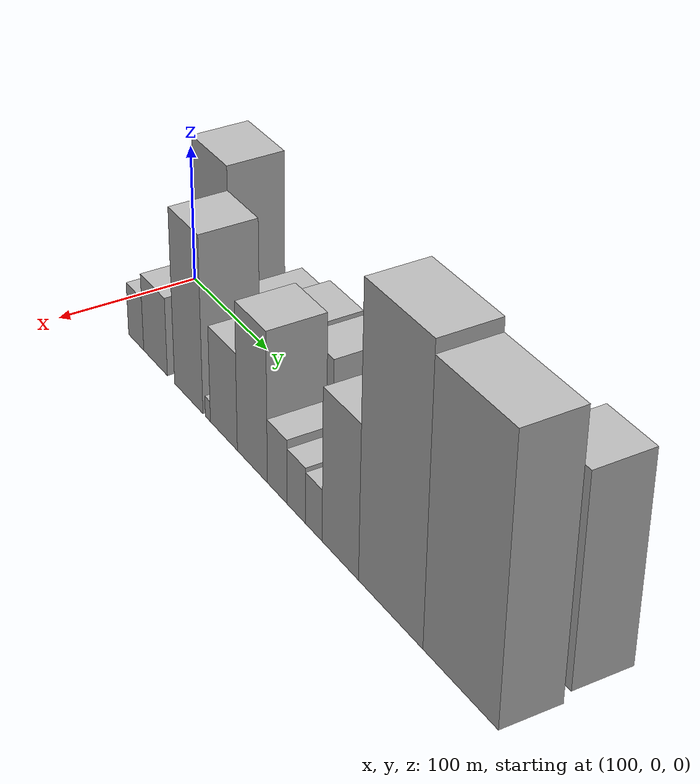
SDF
<sdf version="1.6">
 <world name="default">
  <model name="building_12">
   <static>1</static>
   <pose>100.0000 64.5679 0 0.000000 0.000000 0.000000</pose>
   <link name="link">
    <pose>0 0 66.00 0 0 0</pose>
    <collision name="collision"><geometry><box><size>40.0000 46.4380 132.0000</size></box></geometry></collision>
    <visual name="visual">
     <cast_shadows>0</cast_shadows>
     <geometry><box><size>40.0000 46.4380 132.0000</size></box></geometry>
     <material>
      <script>
       <uri>model://HANNAS_wall/materials/scripts</uri>
       <uri>model://HANNAS_wall/materials/textures</uri>
       <name>vrc/HANNAS_wall</name>
      </script>
     </material>
    </visual>
   </link>
  </model>
  <model name="building_13">
   <static>1</static>
   <pose>100.0000 92.8448 0 0.000000 0.000000 0.000000</pose>
   <link name="link">
    <pose>0 0 12.00 0 0 0</pose>
    <collision name="collision"><geometry><box><size>40.0000 10.1159 24.0000</size></box></geometry></collision>
    <visual name="visual">
     <cast_shadows>0</cast_shadows>
     <geometry><box><size>40.0000 10.1159 24.0000</size></box></geometry>
     <material>
      <script>
       <uri>model://HANNAS_wall/materials/scripts</uri>
       <uri>model://HANNAS_wall/materials/textures</uri>
       <name>vrc/HANNAS_wall</name>
      </script>
     </material>
    </visual>
   </link>
  </model>
  <model name="building_14">
   <static>1</static>
   <pose>100.0000 103.9239 0 0.000000 0.000000 0.000000</pose>
   <link name="link">
    <pose>0 0 13.50 0 0 0</pose>
    <collision name="collision"><geometry><box><size>40.0000 12.0422 27.0000</size></box></geometry></collision>
    <visual name="visual">
     <cast_shadows>0</cast_shadows>
     <geometry><box><size>40.0000 12.0422 27.0000</size></box></geometry>
     <material>
      <script>
       <uri>model://HANNAS_wall/materials/scripts</uri>
       <uri>model://HANNAS_wall/materials/textures</uri>
       <name>vrc/HANNAS_wall</name>
      </script>
     </material>
    </visual>
   </link>
  </model>
  <model name="building_15">
   <static>1</static>
   <pose>100.0000 127.2185 0 0.000000 0.000000 0.000000</pose>
   <link name="link">
    <pose>0 0 30.00 0 0 0</pose>
    <collision name="collision"><geometry><box><size>40.0000 34.5471 60.0000</size></box></geometry></collision>
    <visual name="visual">
     <cast_shadows>0</cast_shadows>
     <geometry><box><size>40.0000 34.5471 60.0000</size></box></geometry>
     <material>
      <script>
       <uri>model://HANNAS_wall/materials/scripts</uri>
       <uri>model://HANNAS_wall/materials/textures</uri>
       <name>vrc/HANNAS_wall</name>
      </script>
     </material>
    </visual>
   </link>
  </model>
  <model name="building_16">
   <static>1</static>
   <pose>100.0000 164.5198 0 0.000000 0.000000 0.000000</pose>
   <link name="link">
    <pose>0 0 34.50 0 0 0</pose>
    <collision name="collision"><geometry><box><size>40.0000 40.0555 69.0000</size></box></geometry></collision>
    <visual name="visual">
     <cast_shadows>0</cast_shadows>
     <geometry><box><size>40.0000 40.0555 69.0000</size></box></geometry>
     <material>
      <script>
       <uri>model://HANNAS_wall/materials/scripts</uri>
       <uri>model://HANNAS_wall/materials/textures</uri>
       <name>vrc/HANNAS_wall</name>
      </script>
     </material>
    </visual>
   </link>
  </model>
  <model name="building_17">
   <static>1</static>
   <pose>100.0000 201.1689 0 0.000000 0.000000 0.000000</pose>
   <link name="link">
    <pose>0 0 33.00 0 0 0</pose>
    <collision name="collision"><geometry><box><size>40.0000 33.2427 66.0000</size></box></geometry></collision>
    <visual name="visual">
     <cast_shadows>0</cast_shadows>
     <geometry><box><size>40.0000 33.2427 66.0000</size></box></geometry>
     <material>
      <script>
       <uri>model://HANNAS_wall/materials/scripts</uri>
       <uri>model://HANNAS_wall/materials/textures</uri>
       <name>vrc/HANNAS_wall</name>
      </script>
     </material>
    </visual>
   </link>
  </model>
  <model name="building_18">
   <static>1</static>
   <pose>100.0000 229.4704 0 0.000000 0.000000 0.000000</pose>
   <link name="link">
    <pose>0 0 7.50 0 0 0</pose>
    <collision name="collision"><geometry><box><size>40.0000 7.3604 15.0000</size></box></geometry></collision>
    <visual name="visual">
     <cast_shadows>0</cast_shadows>
     <geometry><box><size>40.0000 7.3604 15.0000</size></box></geometry>
     <material>
      <script>
       <uri>model://HANNAS_wall/materials/scripts</uri>
       <uri>model://HANNAS_wall/materials/textures</uri>
       <name>vrc/HANNAS_wall</name>
      </script>
     </material>
    </visual>
   </link>
  </model>
  <model name="building_19">
   <static>1</static>
   <pose>100.0000 236.9689 0 0.000000 0.000000 0.000000</pose>
   <link name="link">
    <pose>0 0 9.00 0 0 0</pose>
    <collision name="collision"><geometry><box><size>40.0000 7.6365 18.0000</size></box></geometry></collision>
    <visual name="visual">
     <cast_shadows>0</cast_shadows>
     <geometry><box><size>40.0000 7.6365 18.0000</size></box></geometry>
     <material>
      <script>
       <uri>model://HANNAS_wall/materials/scripts</uri>
       <uri>model://HANNAS_wall/materials/textures</uri>
       <name>vrc/HANNAS_wall</name>
      </script>
     </material>
    </visual>
   </link>
  </model>
  <model name="building_20">
   <static>1</static>
   <pose>100.0000 271.1503 0 0.000000 0.000000 0.000000</pose>
   <link name="link">
    <pose>0 0 58.50 0 0 0</pose>
    <collision name="collision"><geometry><box><size>40.0000 42.7263 117.0000</size></box></geometry></collision>
    <visual name="visual">
     <cast_shadows>0</cast_shadows>
     <geometry><box><size>40.0000 42.7263 117.0000</size></box></geometry>
     <material>
      <script>
       <uri>model://HANNAS_wall/materials/scripts</uri>
       <uri>model://HANNAS_wall/materials/textures</uri>
       <name>vrc/HANNAS_wall</name>
      </script>
     </material>
    </visual>
   </link>
  </model>
  <model name="building_21">
   <static>1</static>
   <pose>100.0000 306.0834 0 0.000000 0.000000 0.000000</pose>
   <link name="link">
    <pose>0 0 25.50 0 0 0</pose>
    <collision name="collision"><geometry><box><size>40.0000 27.1400 51.0000</size></box></geometry></collision>
    <visual name="visual">
     <cast_shadows>0</cast_shadows>
     <geometry><box><size>40.0000 27.1400 51.0000</size></box></geometry>
     <material>
      <script>
       <uri>model://HANNAS_wall/materials/scripts</uri>
       <uri>model://HANNAS_wall/materials/textures</uri>
       <name>vrc/HANNAS_wall</name>
      </script>
     </material>
    </visual>
   </link>
  </model>
  <model name="building_22">
   <static>1</static>
   <pose>100.0000 330.9746 0 0.000000 0.000000 0.000000</pose>
   <link name="link">
    <pose>0 0 22.50 0 0 0</pose>
    <collision name="collision"><geometry><box><size>40.0000 22.6424 45.0000</size></box></geometry></collision>
    <visual name="visual">
     <cast_shadows>0</cast_shadows>
     <geometry><box><size>40.0000 22.6424 45.0000</size></box></geometry>
     <material>
      <script>
       <uri>model://HANNAS_wall/materials/scripts</uri>
       <uri>model://HANNAS_wall/materials/textures</uri>
       <name>vrc/HANNAS_wall</name>
      </script>
     </material>
    </visual>
   </link>
  </model>
  <model name="building_23">
   <static>1</static>
   <pose>100.0000 366.6522 0 0.000000 0.000000 0.000000</pose>
   <link name="link">
    <pose>0 0 51.00 0 0 0</pose>
    <collision name="collision"><geometry><box><size>40.0000 34.7127 102.0000</size></box></geometry></collision>
    <visual name="visual">
     <cast_shadows>0</cast_shadows>
     <geometry><box><size>40.0000 34.7127 102.0000</size></box></geometry>
     <material>
      <script>
       <uri>model://HANNAS_wall/materials/scripts</uri>
       <uri>model://HANNAS_wall/materials/textures</uri>
       <name>vrc/HANNAS_wall</name>
      </script>
     </material>
    </visual>
   </link>
  </model>
  <model name="building_24">
   <static>1</static>
   <pose>100.0000 389.9149 0 0.000000 0.000000 0.000000</pose>
   <link name="link">
    <pose>0 0 13.50 0 0 0</pose>
    <collision name="collision"><geometry><box><size>40.0000 11.8127 27.0000</size></box></geometry></collision>
    <visual name="visual">
     <cast_shadows>0</cast_shadows>
     <geometry><box><size>40.0000 11.8127 27.0000</size></box></geometry>
     <material>
      <script>
       <uri>model://HANNAS_wall/materials/scripts</uri>
       <uri>model://HANNAS_wall/materials/textures</uri>
       <name>vrc/HANNAS_wall</name>
      </script>
     </material>
    </visual>
   </link>
  </model>
  <model name="building_25">
   <static>1</static>
   <pose>100.0000 407.0484 0 0.000000 0.000000 0.000000</pose>
   <link name="link">
    <pose>0 0 21.00 0 0 0</pose>
    <collision name="collision"><geometry><box><size>40.0000 22.4544 42.0000</size></box></geometry></collision>
    <visual name="visual">
     <cast_shadows>0</cast_shadows>
     <geometry><box><size>40.0000 22.4544 42.0000</size></box></geometry>
     <material>
      <script>
       <uri>model://HANNAS_wall/materials/scripts</uri>
       <uri>model://HANNAS_wall/materials/textures</uri>
       <name>vrc/HANNAS_wall</name>
      </script>
     </material>
    </visual>
   </link>
  </model>
  <model name="building_26">
   <static>1</static>
   <pose>100.0000 439.5276 0 0.000000 0.000000 0.000000</pose>
   <link name="link">
    <pose>0 0 70.50 0 0 0</pose>
    <collision name="collision"><geometry><box><size>40.0000 42.5039 141.0000</size></box></geometry></collision>
    <visual name="visual">
     <cast_shadows>0</cast_shadows>
     <geometry><box><size>40.0000 42.5039 141.0000</size></box></geometry>
     <material>
      <script>
       <uri>model://HANNAS_wall/materials/scripts</uri>
       <uri>model://HANNAS_wall/materials/textures</uri>
       <name>vrc/HANNAS_wall</name>
      </script>
     </material>
    </visual>
   </link>
  </model>
  <model name="building_41">
   <static>1</static>
   <pose>149.0000 51.0014 0 0.000000 0.000000 0.000000</pose>
   <link name="link">
    <pose>0 0 19.50 0 0 0</pose>
    <collision name="collision"><geometry><box><size>40.0000 21.9815 39.0000</size></box></geometry></collision>
    <visual name="visual">
     <cast_shadows>0</cast_shadows>
     <geometry><box><size>40.0000 21.9815 39.0000</size></box></geometry>
     <material>
      <script>
       <uri>model://HANNAS_wall/materials/scripts</uri>
       <uri>model://HANNAS_wall/materials/textures</uri>
       <name>vrc/HANNAS_wall</name>
      </script>
     </material>
    </visual>
   </link>
  </model>
  <model name="building_42">
   <static>1</static>
   <pose>149.0000 78.7665 0 0.000000 0.000000 0.000000</pose>
   <link name="link">
    <pose>0 0 28.50 0 0 0</pose>
    <collision name="collision"><geometry><box><size>40.0000 33.5487 57.0000</size></box></geometry></collision>
    <visual name="visual">
     <cast_shadows>0</cast_shadows>
     <geometry><box><size>40.0000 33.5487 57.0000</size></box></geometry>
     <material>
      <script>
       <uri>model://HANNAS_wall/materials/scripts</uri>
       <uri>model://HANNAS_wall/materials/textures</uri>
       <name>vrc/HANNAS_wall</name>
      </script>
     </material>
    </visual>
   </link>
  </model>
  <model name="building_43">
   <static>1</static>
   <pose>149.0000 124.7033 0 0.000000 0.000000 0.000000</pose>
   <link name="link">
    <pose>0 0 63.00 0 0 0</pose>
    <collision name="collision"><geometry><box><size>40.0000 38.3250 126.0000</size></box></geometry></collision>
    <visual name="visual">
     <cast_shadows>0</cast_shadows>
     <geometry><box><size>40.0000 38.3250 126.0000</size></box></geometry>
     <material>
      <script>
       <uri>model://HANNAS_wall/materials/scripts</uri>
       <uri>model://HANNAS_wall/materials/textures</uri>
       <name>vrc/HANNAS_wall</name>
      </script>
     </material>
    </visual>
   </link>
  </model>
  <model name="building_44">
   <static>1</static>
   <pose>149.0000 150.2373 0 0.000000 0.000000 0.000000</pose>
   <link name="link">
    <pose>0 0 7.50 0 0 0</pose>
    <collision name="collision"><geometry><box><size>40.0000 6.7431 15.0000</size></box></geometry></collision>
    <visual name="visual">
     <cast_shadows>0</cast_shadows>
     <geometry><box><size>40.0000 6.7431 15.0000</size></box></geometry>
     <material>
      <script>
       <uri>model://HANNAS_wall/materials/scripts</uri>
       <uri>model://HANNAS_wall/materials/textures</uri>
       <name>vrc/HANNAS_wall</name>
      </script>
     </material>
    </visual>
   </link>
  </model>
  <model name="building_45">
   <static>1</static>
   <pose>149.0000 170.9236 0 0.000000 0.000000 0.000000</pose>
   <link name="link">
    <pose>0 0 34.50 0 0 0</pose>
    <collision name="collision"><geometry><box><size>40.0000 34.6294 69.0000</size></box></geometry></collision>
    <visual name="visual">
     <cast_shadows>0</cast_shadows>
     <geometry><box><size>40.0000 34.6294 69.0000</size></box></geometry>
     <material>
      <script>
       <uri>model://HANNAS_wall/materials/scripts</uri>
       <uri>model://HANNAS_wall/materials/textures</uri>
       <name>vrc/HANNAS_wall</name>
      </script>
     </material>
    </visual>
   </link>
  </model>
  <model name="building_46">
   <static>1</static>
   <pose>149.0000 206.7712 0 0.000000 0.000000 0.000000</pose>
   <link name="link">
    <pose>0 0 52.50 0 0 0</pose>
    <collision name="collision"><geometry><box><size>40.0000 37.0657 105.0000</size></box></geometry></collision>
    <visual name="visual">
     <cast_shadows>0</cast_shadows>
     <geometry><box><size>40.0000 37.0657 105.0000</size></box></geometry>
     <material>
      <script>
       <uri>model://HANNAS_wall/materials/scripts</uri>
       <uri>model://HANNAS_wall/materials/textures</uri>
       <name>vrc/HANNAS_wall</name>
      </script>
     </material>
    </visual>
   </link>
  </model>
  <model name="building_47">
   <static>1</static>
   <pose>149.0000 237.0606 0 0.000000 0.000000 0.000000</pose>
   <link name="link">
    <pose>0 0 22.50 0 0 0</pose>
    <collision name="collision"><geometry><box><size>40.0000 23.5131 45.0000</size></box></geometry></collision>
    <visual name="visual">
     <cast_shadows>0</cast_shadows>
     <geometry><box><size>40.0000 23.5131 45.0000</size></box></geometry>
     <material>
      <script>
       <uri>model://HANNAS_wall/materials/scripts</uri>
       <uri>model://HANNAS_wall/materials/textures</uri>
       <name>vrc/HANNAS_wall</name>
      </script>
     </material>
    </visual>
   </link>
  </model>
  <model name="building_48">
   <static>1</static>
   <pose>149.0000 259.5003 0 0.000000 0.000000 0.000000</pose>
   <link name="link">
    <pose>0 0 19.50 0 0 0</pose>
    <collision name="collision"><geometry><box><size>40.0000 21.3663 39.0000</size></box></geometry></collision>
    <visual name="visual">
     <cast_shadows>0</cast_shadows>
     <geometry><box><size>40.0000 21.3663 39.0000</size></box></geometry>
     <material>
      <script>
       <uri>model://HANNAS_wall/materials/scripts</uri>
       <uri>model://HANNAS_wall/materials/textures</uri>
       <name>vrc/HANNAS_wall</name>
      </script>
     </material>
    </visual>
   </link>
  </model>
  <model name="building_49">
   <static>1</static>
   <pose>149.0000 279.6127 0 0.000000 0.000000 0.000000</pose>
   <link name="link">
    <pose>0 0 18.00 0 0 0</pose>
    <collision name="collision"><geometry><box><size>40.0000 18.8584 36.0000</size></box></geometry></collision>
    <visual name="visual">
     <cast_shadows>0</cast_shadows>
     <geometry><box><size>40.0000 18.8584 36.0000</size></box></geometry>
     <material>
      <script>
       <uri>model://HANNAS_wall/materials/scripts</uri>
       <uri>model://HANNAS_wall/materials/textures</uri>
       <name>vrc/HANNAS_wall</name>
      </script>
     </material>
    </visual>
   </link>
  </model>
  <model name="building_50">
   <static>1</static>
   <pose>149.0000 309.0005 0 0.000000 0.000000 0.000000</pose>
   <link name="link">
    <pose>0 0 52.50 0 0 0</pose>
    <collision name="collision"><geometry><box><size>40.0000 39.9173 105.0000</size></box></geometry></collision>
    <visual name="visual">
     <cast_shadows>0</cast_shadows>
     <geometry><box><size>40.0000 39.9173 105.0000</size></box></geometry>
     <material>
      <script>
       <uri>model://HANNAS_wall/materials/scripts</uri>
       <uri>model://HANNAS_wall/materials/textures</uri>
       <name>vrc/HANNAS_wall</name>
      </script>
     </material>
    </visual>
   </link>
  </model>
  <model name="building_51">
   <static>1</static>
   <pose>149.0000 362.0565 0 0.000000 0.000000 0.000000</pose>
   <link name="link">
    <pose>0 0 97.50 0 0 0</pose>
    <collision name="collision"><geometry><box><size>40.0000 66.1948 195.0000</size></box></geometry></collision>
    <visual name="visual">
     <cast_shadows>0</cast_shadows>
     <geometry><box><size>40.0000 66.1948 195.0000</size></box></geometry>
     <material>
      <script>
       <uri>model://HANNAS_wall/materials/scripts</uri>
       <uri>model://HANNAS_wall/materials/textures</uri>
       <name>vrc/HANNAS_wall</name>
      </script>
     </material>
    </visual>
   </link>
  </model>
  <model name="building_52">
   <static>1</static>
   <pose>149.0000 430.7747 0 0.000000 0.000000 0.000000</pose>
   <link name="link">
    <pose>0 0 93.00 0 0 0</pose>
    <collision name="collision"><geometry><box><size>40.0000 71.2416 186.0000</size></box></geometry></collision>
    <visual name="visual">
     <cast_shadows>0</cast_shadows>
     <geometry><box><size>40.0000 71.2416 186.0000</size></box></geometry>
     <material>
      <script>
       <uri>model://HANNAS_wall/materials/scripts</uri>
       <uri>model://HANNAS_wall/materials/textures</uri>
       <name>vrc/HANNAS_wall</name>
      </script>
     </material>
    </visual>
   </link>
  </model>
 </world>
</sdf>
